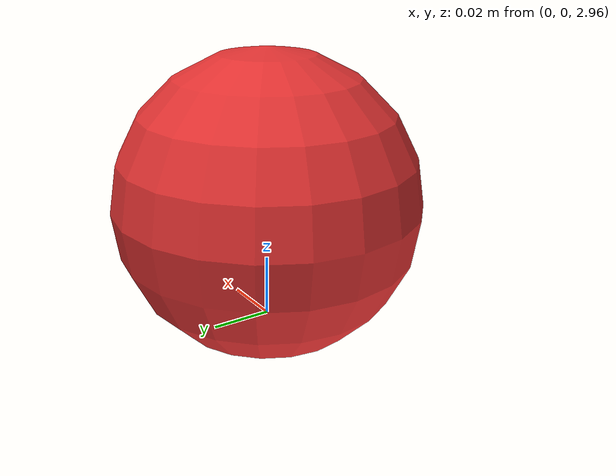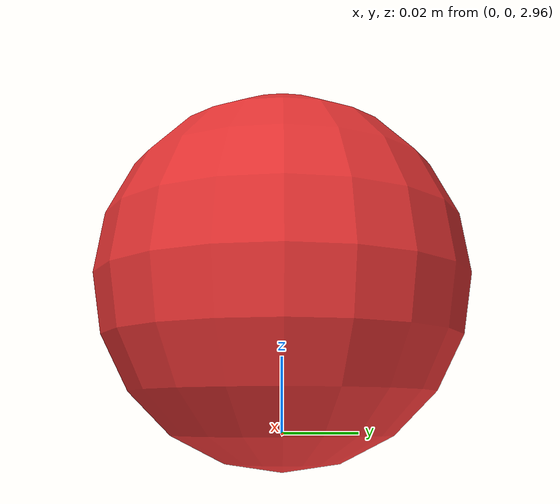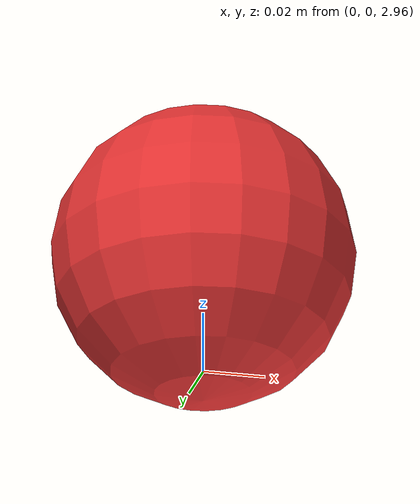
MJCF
<mujoco model="ball projectile">
    <option timestep="0.002" gravity="0 0 -9.81"/>
    <worldbody>
        <!-- Ground plane for landing detection -->
        <geom type="plane" size="10 10 0.1" rgba="0.8 0.8 0.8 1"/>

        <!-- Projectile Sphere with 6-DOF Free Joint -->
        <body name="ball" pos="0 0 3.0">
            <freejoint name="ball_freejoint"/>
            <geom type="sphere" size="0.05" mass="0.15" rgba="0.9 0.2 0.2 1" friction="0.4"/>
        </body>
    </worldbody>
</mujoco>
